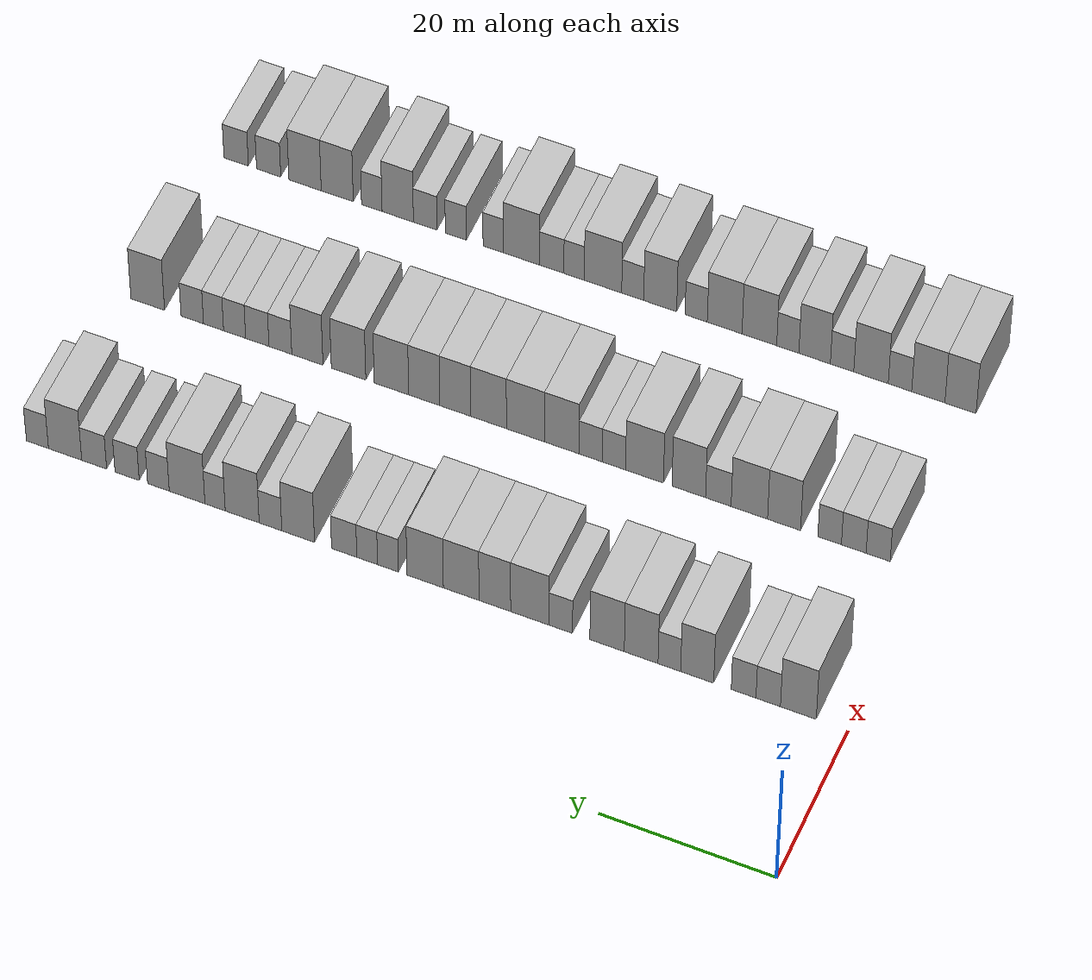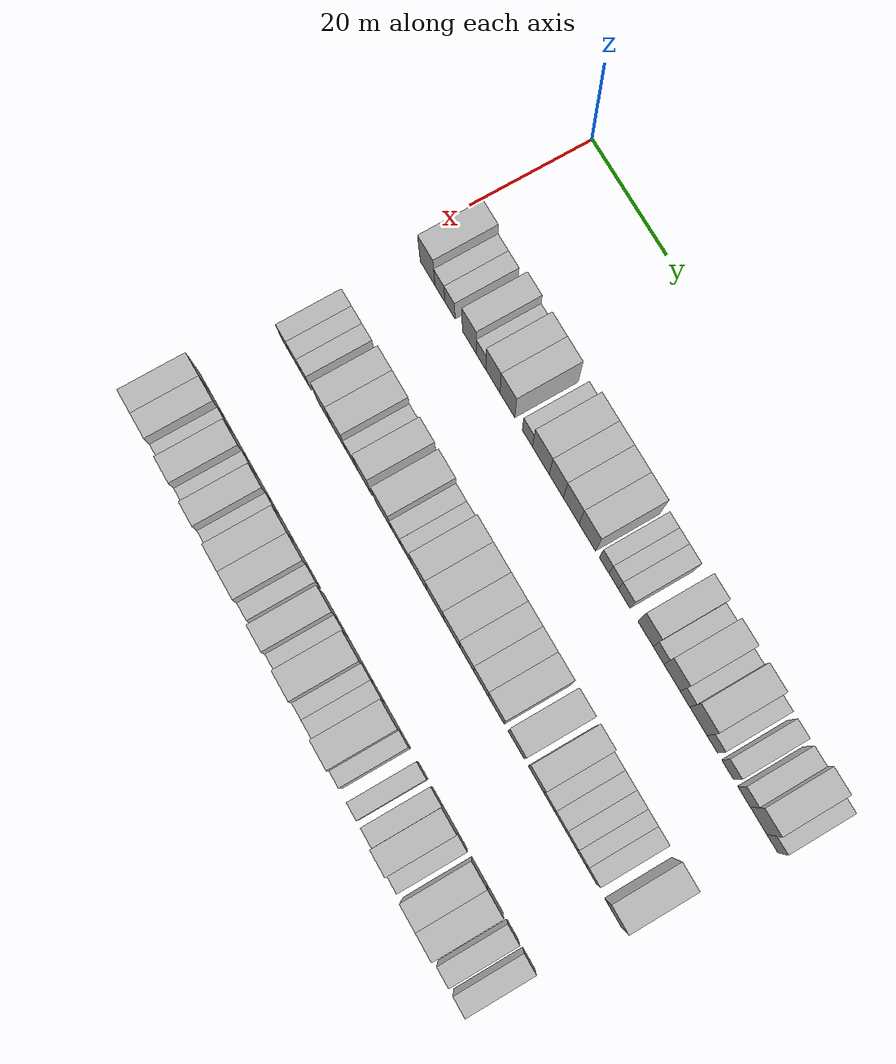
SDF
<sdf version="1.6">
 <world name="default">
  <model name="building_100">
   <static>1</static>
   <pose>25.0000 5.7225 0 0.000000 0.000000 0.000000</pose>
   <link name="link">
    <pose>0 0 4.50 0 0 0</pose>
    <collision name="collision"><geometry><box><size>10.0000 4.0671 9.0000</size></box></geometry></collision>
    <visual name="visual">
     <cast_shadows>0</cast_shadows>
     <geometry><box><size>10.0000 4.0671 9.0000</size></box></geometry>
     <material>
      <script>
       <uri>model://HANNAS_wall/materials/scripts</uri>
       <uri>model://HANNAS_wall/materials/textures</uri>
       <name>vrc/HANNAS_wall</name>
      </script>
     </material>
    </visual>
   </link>
  </model>
  <model name="building_101">
   <static>1</static>
   <pose>25.0000 9.1482 0 0.000000 0.000000 0.000000</pose>
   <link name="link">
    <pose>0 0 3.00 0 0 0</pose>
    <collision name="collision"><geometry><box><size>10.0000 2.7841 6.0000</size></box></geometry></collision>
    <visual name="visual">
     <cast_shadows>0</cast_shadows>
     <geometry><box><size>10.0000 2.7841 6.0000</size></box></geometry>
     <material>
      <script>
       <uri>model://HANNAS_wall/materials/scripts</uri>
       <uri>model://HANNAS_wall/materials/textures</uri>
       <name>vrc/HANNAS_wall</name>
      </script>
     </material>
    </visual>
   </link>
  </model>
  <model name="building_102">
   <static>1</static>
   <pose>25.0000 11.9509 0 0.000000 0.000000 0.000000</pose>
   <link name="link">
    <pose>0 0 3.00 0 0 0</pose>
    <collision name="collision"><geometry><box><size>10.0000 2.8212 6.0000</size></box></geometry></collision>
    <visual name="visual">
     <cast_shadows>0</cast_shadows>
     <geometry><box><size>10.0000 2.8212 6.0000</size></box></geometry>
     <material>
      <script>
       <uri>model://HANNAS_wall/materials/scripts</uri>
       <uri>model://HANNAS_wall/materials/textures</uri>
       <name>vrc/HANNAS_wall</name>
      </script>
     </material>
    </visual>
   </link>
  </model>
  <model name="building_103">
   <static>1</static>
   <pose>25.0000 17.2552 0 0.000000 0.000000 0.000000</pose>
   <link name="link">
    <pose>0 0 4.50 0 0 0</pose>
    <collision name="collision"><geometry><box><size>10.0000 3.7873 9.0000</size></box></geometry></collision>
    <visual name="visual">
     <cast_shadows>0</cast_shadows>
     <geometry><box><size>10.0000 3.7873 9.0000</size></box></geometry>
     <material>
      <script>
       <uri>model://HANNAS_wall/materials/scripts</uri>
       <uri>model://HANNAS_wall/materials/textures</uri>
       <name>vrc/HANNAS_wall</name>
      </script>
     </material>
    </visual>
   </link>
  </model>
  <model name="building_104">
   <static>1</static>
   <pose>25.0000 20.4433 0 0.000000 0.000000 0.000000</pose>
   <link name="link">
    <pose>0 0 3.00 0 0 0</pose>
    <collision name="collision"><geometry><box><size>10.0000 2.5890 6.0000</size></box></geometry></collision>
    <visual name="visual">
     <cast_shadows>0</cast_shadows>
     <geometry><box><size>10.0000 2.5890 6.0000</size></box></geometry>
     <material>
      <script>
       <uri>model://HANNAS_wall/materials/scripts</uri>
       <uri>model://HANNAS_wall/materials/textures</uri>
       <name>vrc/HANNAS_wall</name>
      </script>
     </material>
    </visual>
   </link>
  </model>
  <model name="building_105">
   <static>1</static>
   <pose>25.0000 23.6752 0 0.000000 0.000000 0.000000</pose>
   <link name="link">
    <pose>0 0 4.50 0 0 0</pose>
    <collision name="collision"><geometry><box><size>10.0000 3.8747 9.0000</size></box></geometry></collision>
    <visual name="visual">
     <cast_shadows>0</cast_shadows>
     <geometry><box><size>10.0000 3.8747 9.0000</size></box></geometry>
     <material>
      <script>
       <uri>model://HANNAS_wall/materials/scripts</uri>
       <uri>model://HANNAS_wall/materials/textures</uri>
       <name>vrc/HANNAS_wall</name>
      </script>
     </material>
    </visual>
   </link>
  </model>
  <model name="building_106">
   <static>1</static>
   <pose>25.0000 27.5951 0 0.000000 0.000000 0.000000</pose>
   <link name="link">
    <pose>0 0 4.50 0 0 0</pose>
    <collision name="collision"><geometry><box><size>10.0000 3.9653 9.0000</size></box></geometry></collision>
    <visual name="visual">
     <cast_shadows>0</cast_shadows>
     <geometry><box><size>10.0000 3.9653 9.0000</size></box></geometry>
     <material>
      <script>
       <uri>model://HANNAS_wall/materials/scripts</uri>
       <uri>model://HANNAS_wall/materials/textures</uri>
       <name>vrc/HANNAS_wall</name>
      </script>
     </material>
    </visual>
   </link>
  </model>
  <model name="building_107">
   <static>1</static>
   <pose>25.0000 32.9347 0 0.000000 0.000000 0.000000</pose>
   <link name="link">
    <pose>0 0 3.00 0 0 0</pose>
    <collision name="collision"><geometry><box><size>10.0000 2.7138 6.0000</size></box></geometry></collision>
    <visual name="visual">
     <cast_shadows>0</cast_shadows>
     <geometry><box><size>10.0000 2.7138 6.0000</size></box></geometry>
     <material>
      <script>
       <uri>model://HANNAS_wall/materials/scripts</uri>
       <uri>model://HANNAS_wall/materials/textures</uri>
       <name>vrc/HANNAS_wall</name>
      </script>
     </material>
    </visual>
   </link>
  </model>
  <model name="building_108">
   <static>1</static>
   <pose>25.0000 36.5112 0 0.000000 0.000000 0.000000</pose>
   <link name="link">
    <pose>0 0 4.50 0 0 0</pose>
    <collision name="collision"><geometry><box><size>10.0000 4.4392 9.0000</size></box></geometry></collision>
    <visual name="visual">
     <cast_shadows>0</cast_shadows>
     <geometry><box><size>10.0000 4.4392 9.0000</size></box></geometry>
     <material>
      <script>
       <uri>model://HANNAS_wall/materials/scripts</uri>
       <uri>model://HANNAS_wall/materials/textures</uri>
       <name>vrc/HANNAS_wall</name>
      </script>
     </material>
    </visual>
   </link>
  </model>
  <model name="building_109">
   <static>1</static>
   <pose>25.0000 40.5691 0 0.000000 0.000000 0.000000</pose>
   <link name="link">
    <pose>0 0 4.50 0 0 0</pose>
    <collision name="collision"><geometry><box><size>10.0000 3.6765 9.0000</size></box></geometry></collision>
    <visual name="visual">
     <cast_shadows>0</cast_shadows>
     <geometry><box><size>10.0000 3.6765 9.0000</size></box></geometry>
     <material>
      <script>
       <uri>model://HANNAS_wall/materials/scripts</uri>
       <uri>model://HANNAS_wall/materials/textures</uri>
       <name>vrc/HANNAS_wall</name>
      </script>
     </material>
    </visual>
   </link>
  </model>
  <model name="building_110">
   <static>1</static>
   <pose>25.0000 44.4764 0 0.000000 0.000000 0.000000</pose>
   <link name="link">
    <pose>0 0 4.50 0 0 0</pose>
    <collision name="collision"><geometry><box><size>10.0000 4.1382 9.0000</size></box></geometry></collision>
    <visual name="visual">
     <cast_shadows>0</cast_shadows>
     <geometry><box><size>10.0000 4.1382 9.0000</size></box></geometry>
     <material>
      <script>
       <uri>model://HANNAS_wall/materials/scripts</uri>
       <uri>model://HANNAS_wall/materials/textures</uri>
       <name>vrc/HANNAS_wall</name>
      </script>
     </material>
    </visual>
   </link>
  </model>
  <model name="building_111">
   <static>1</static>
   <pose>25.0000 48.6621 0 0.000000 0.000000 0.000000</pose>
   <link name="link">
    <pose>0 0 4.50 0 0 0</pose>
    <collision name="collision"><geometry><box><size>10.0000 4.2331 9.0000</size></box></geometry></collision>
    <visual name="visual">
     <cast_shadows>0</cast_shadows>
     <geometry><box><size>10.0000 4.2331 9.0000</size></box></geometry>
     <material>
      <script>
       <uri>model://HANNAS_wall/materials/scripts</uri>
       <uri>model://HANNAS_wall/materials/textures</uri>
       <name>vrc/HANNAS_wall</name>
      </script>
     </material>
    </visual>
   </link>
  </model>
  <model name="building_112">
   <static>1</static>
   <pose>25.0000 53.0008 0 0.000000 0.000000 0.000000</pose>
   <link name="link">
    <pose>0 0 3.00 0 0 0</pose>
    <collision name="collision"><geometry><box><size>10.0000 2.4443 6.0000</size></box></geometry></collision>
    <visual name="visual">
     <cast_shadows>0</cast_shadows>
     <geometry><box><size>10.0000 2.4443 6.0000</size></box></geometry>
     <material>
      <script>
       <uri>model://HANNAS_wall/materials/scripts</uri>
       <uri>model://HANNAS_wall/materials/textures</uri>
       <name>vrc/HANNAS_wall</name>
      </script>
     </material>
    </visual>
   </link>
  </model>
  <model name="building_113">
   <static>1</static>
   <pose>25.0000 55.4373 0 0.000000 0.000000 0.000000</pose>
   <link name="link">
    <pose>0 0 3.00 0 0 0</pose>
    <collision name="collision"><geometry><box><size>10.0000 2.4286 6.0000</size></box></geometry></collision>
    <visual name="visual">
     <cast_shadows>0</cast_shadows>
     <geometry><box><size>10.0000 2.4286 6.0000</size></box></geometry>
     <material>
      <script>
       <uri>model://HANNAS_wall/materials/scripts</uri>
       <uri>model://HANNAS_wall/materials/textures</uri>
       <name>vrc/HANNAS_wall</name>
      </script>
     </material>
    </visual>
   </link>
  </model>
  <model name="building_114">
   <static>1</static>
   <pose>25.0000 58.1340 0 0.000000 0.000000 0.000000</pose>
   <link name="link">
    <pose>0 0 3.00 0 0 0</pose>
    <collision name="collision"><geometry><box><size>10.0000 2.9649 6.0000</size></box></geometry></collision>
    <visual name="visual">
     <cast_shadows>0</cast_shadows>
     <geometry><box><size>10.0000 2.9649 6.0000</size></box></geometry>
     <material>
      <script>
       <uri>model://HANNAS_wall/materials/scripts</uri>
       <uri>model://HANNAS_wall/materials/textures</uri>
       <name>vrc/HANNAS_wall</name>
      </script>
     </material>
    </visual>
   </link>
  </model>
  <model name="building_115">
   <static>1</static>
   <pose>25.0000 63.5400 0 0.000000 0.000000 0.000000</pose>
   <link name="link">
    <pose>0 0 4.50 0 0 0</pose>
    <collision name="collision"><geometry><box><size>10.0000 3.8471 9.0000</size></box></geometry></collision>
    <visual name="visual">
     <cast_shadows>0</cast_shadows>
     <geometry><box><size>10.0000 3.8471 9.0000</size></box></geometry>
     <material>
      <script>
       <uri>model://HANNAS_wall/materials/scripts</uri>
       <uri>model://HANNAS_wall/materials/textures</uri>
       <name>vrc/HANNAS_wall</name>
      </script>
     </material>
    </visual>
   </link>
  </model>
  <model name="building_116">
   <static>1</static>
   <pose>25.0000 66.8009 0 0.000000 0.000000 0.000000</pose>
   <link name="link">
    <pose>0 0 3.00 0 0 0</pose>
    <collision name="collision"><geometry><box><size>10.0000 2.6747 6.0000</size></box></geometry></collision>
    <visual name="visual">
     <cast_shadows>0</cast_shadows>
     <geometry><box><size>10.0000 2.6747 6.0000</size></box></geometry>
     <material>
      <script>
       <uri>model://HANNAS_wall/materials/scripts</uri>
       <uri>model://HANNAS_wall/materials/textures</uri>
       <name>vrc/HANNAS_wall</name>
      </script>
     </material>
    </visual>
   </link>
  </model>
  <model name="building_117">
   <static>1</static>
   <pose>25.0000 70.1409 0 0.000000 0.000000 0.000000</pose>
   <link name="link">
    <pose>0 0 4.50 0 0 0</pose>
    <collision name="collision"><geometry><box><size>10.0000 4.0053 9.0000</size></box></geometry></collision>
    <visual name="visual">
     <cast_shadows>0</cast_shadows>
     <geometry><box><size>10.0000 4.0053 9.0000</size></box></geometry>
     <material>
      <script>
       <uri>model://HANNAS_wall/materials/scripts</uri>
       <uri>model://HANNAS_wall/materials/textures</uri>
       <name>vrc/HANNAS_wall</name>
      </script>
     </material>
    </visual>
   </link>
  </model>
  <model name="building_118">
   <static>1</static>
   <pose>25.0000 73.3453 0 0.000000 0.000000 0.000000</pose>
   <link name="link">
    <pose>0 0 3.00 0 0 0</pose>
    <collision name="collision"><geometry><box><size>10.0000 2.4035 6.0000</size></box></geometry></collision>
    <visual name="visual">
     <cast_shadows>0</cast_shadows>
     <geometry><box><size>10.0000 2.4035 6.0000</size></box></geometry>
     <material>
      <script>
       <uri>model://HANNAS_wall/materials/scripts</uri>
       <uri>model://HANNAS_wall/materials/textures</uri>
       <name>vrc/HANNAS_wall</name>
      </script>
     </material>
    </visual>
   </link>
  </model>
  <model name="building_119">
   <static>1</static>
   <pose>25.0000 76.6622 0 0.000000 0.000000 0.000000</pose>
   <link name="link">
    <pose>0 0 4.50 0 0 0</pose>
    <collision name="collision"><geometry><box><size>10.0000 4.2303 9.0000</size></box></geometry></collision>
    <visual name="visual">
     <cast_shadows>0</cast_shadows>
     <geometry><box><size>10.0000 4.2303 9.0000</size></box></geometry>
     <material>
      <script>
       <uri>model://HANNAS_wall/materials/scripts</uri>
       <uri>model://HANNAS_wall/materials/textures</uri>
       <name>vrc/HANNAS_wall</name>
      </script>
     </material>
    </visual>
   </link>
  </model>
  <model name="building_120">
   <static>1</static>
   <pose>25.0000 80.0647 0 0.000000 0.000000 0.000000</pose>
   <link name="link">
    <pose>0 0 3.00 0 0 0</pose>
    <collision name="collision"><geometry><box><size>10.0000 2.5748 6.0000</size></box></geometry></collision>
    <visual name="visual">
     <cast_shadows>0</cast_shadows>
     <geometry><box><size>10.0000 2.5748 6.0000</size></box></geometry>
     <material>
      <script>
       <uri>model://HANNAS_wall/materials/scripts</uri>
       <uri>model://HANNAS_wall/materials/textures</uri>
       <name>vrc/HANNAS_wall</name>
      </script>
     </material>
    </visual>
   </link>
  </model>
  <model name="building_121">
   <static>1</static>
   <pose>25.0000 83.7918 0 0.000000 0.000000 0.000000</pose>
   <link name="link">
    <pose>0 0 3.00 0 0 0</pose>
    <collision name="collision"><geometry><box><size>10.0000 2.8794 6.0000</size></box></geometry></collision>
    <visual name="visual">
     <cast_shadows>0</cast_shadows>
     <geometry><box><size>10.0000 2.8794 6.0000</size></box></geometry>
     <material>
      <script>
       <uri>model://HANNAS_wall/materials/scripts</uri>
       <uri>model://HANNAS_wall/materials/textures</uri>
       <name>vrc/HANNAS_wall</name>
      </script>
     </material>
    </visual>
   </link>
  </model>
  <model name="building_122">
   <static>1</static>
   <pose>25.0000 87.7174 0 0.000000 0.000000 0.000000</pose>
   <link name="link">
    <pose>0 0 3.00 0 0 0</pose>
    <collision name="collision"><geometry><box><size>10.0000 2.9718 6.0000</size></box></geometry></collision>
    <visual name="visual">
     <cast_shadows>0</cast_shadows>
     <geometry><box><size>10.0000 2.9718 6.0000</size></box></geometry>
     <material>
      <script>
       <uri>model://HANNAS_wall/materials/scripts</uri>
       <uri>model://HANNAS_wall/materials/textures</uri>
       <name>vrc/HANNAS_wall</name>
      </script>
     </material>
    </visual>
   </link>
  </model>
  <model name="building_123">
   <static>1</static>
   <pose>25.0000 91.1930 0 0.000000 0.000000 0.000000</pose>
   <link name="link">
    <pose>0 0 4.50 0 0 0</pose>
    <collision name="collision"><geometry><box><size>10.0000 3.9793 9.0000</size></box></geometry></collision>
    <visual name="visual">
     <cast_shadows>0</cast_shadows>
     <geometry><box><size>10.0000 3.9793 9.0000</size></box></geometry>
     <material>
      <script>
       <uri>model://HANNAS_wall/materials/scripts</uri>
       <uri>model://HANNAS_wall/materials/textures</uri>
       <name>vrc/HANNAS_wall</name>
      </script>
     </material>
    </visual>
   </link>
  </model>
  <model name="building_124">
   <static>1</static>
   <pose>25.0000 94.5028 0 0.000000 0.000000 0.000000</pose>
   <link name="link">
    <pose>0 0 3.00 0 0 0</pose>
    <collision name="collision"><geometry><box><size>10.0000 2.6404 6.0000</size></box></geometry></collision>
    <visual name="visual">
     <cast_shadows>0</cast_shadows>
     <geometry><box><size>10.0000 2.6404 6.0000</size></box></geometry>
     <material>
      <script>
       <uri>model://HANNAS_wall/materials/scripts</uri>
       <uri>model://HANNAS_wall/materials/textures</uri>
       <name>vrc/HANNAS_wall</name>
      </script>
     </material>
    </visual>
   </link>
  </model>
  <model name="building_298">
   <static>1</static>
   <pose>47.0000 5.3678 0 0.000000 0.000000 0.000000</pose>
   <link name="link">
    <pose>0 0 3.00 0 0 0</pose>
    <collision name="collision"><geometry><box><size>10.0000 2.7704 6.0000</size></box></geometry></collision>
    <visual name="visual">
     <cast_shadows>0</cast_shadows>
     <geometry><box><size>10.0000 2.7704 6.0000</size></box></geometry>
     <material>
      <script>
       <uri>model://HANNAS_wall/materials/scripts</uri>
       <uri>model://HANNAS_wall/materials/textures</uri>
       <name>vrc/HANNAS_wall</name>
      </script>
     </material>
    </visual>
   </link>
  </model>
  <model name="building_299">
   <static>1</static>
   <pose>47.0000 8.1744 0 0.000000 0.000000 0.000000</pose>
   <link name="link">
    <pose>0 0 3.00 0 0 0</pose>
    <collision name="collision"><geometry><box><size>10.0000 2.8427 6.0000</size></box></geometry></collision>
    <visual name="visual">
     <cast_shadows>0</cast_shadows>
     <geometry><box><size>10.0000 2.8427 6.0000</size></box></geometry>
     <material>
      <script>
       <uri>model://HANNAS_wall/materials/scripts</uri>
       <uri>model://HANNAS_wall/materials/textures</uri>
       <name>vrc/HANNAS_wall</name>
      </script>
     </material>
    </visual>
   </link>
  </model>
  <model name="building_300">
   <static>1</static>
   <pose>47.0000 10.9571 0 0.000000 0.000000 0.000000</pose>
   <link name="link">
    <pose>0 0 3.00 0 0 0</pose>
    <collision name="collision"><geometry><box><size>10.0000 2.7226 6.0000</size></box></geometry></collision>
    <visual name="visual">
     <cast_shadows>0</cast_shadows>
     <geometry><box><size>10.0000 2.7226 6.0000</size></box></geometry>
     <material>
      <script>
       <uri>model://HANNAS_wall/materials/scripts</uri>
       <uri>model://HANNAS_wall/materials/textures</uri>
       <name>vrc/HANNAS_wall</name>
      </script>
     </material>
    </visual>
   </link>
  </model>
  <model name="building_301">
   <static>1</static>
   <pose>47.0000 16.2301 0 0.000000 0.000000 0.000000</pose>
   <link name="link">
    <pose>0 0 4.50 0 0 0</pose>
    <collision name="collision"><geometry><box><size>10.0000 3.8233 9.0000</size></box></geometry></collision>
    <visual name="visual">
     <cast_shadows>0</cast_shadows>
     <geometry><box><size>10.0000 3.8233 9.0000</size></box></geometry>
     <material>
      <script>
       <uri>model://HANNAS_wall/materials/scripts</uri>
       <uri>model://HANNAS_wall/materials/textures</uri>
       <name>vrc/HANNAS_wall</name>
      </script>
     </material>
    </visual>
   </link>
  </model>
  <model name="building_302">
   <static>1</static>
   <pose>47.0000 20.2582 0 0.000000 0.000000 0.000000</pose>
   <link name="link">
    <pose>0 0 4.50 0 0 0</pose>
    <collision name="collision"><geometry><box><size>10.0000 4.2330 9.0000</size></box></geometry></collision>
    <visual name="visual">
     <cast_shadows>0</cast_shadows>
     <geometry><box><size>10.0000 4.2330 9.0000</size></box></geometry>
     <material>
      <script>
       <uri>model://HANNAS_wall/materials/scripts</uri>
       <uri>model://HANNAS_wall/materials/textures</uri>
       <name>vrc/HANNAS_wall</name>
      </script>
     </material>
    </visual>
   </link>
  </model>
  <model name="building_303">
   <static>1</static>
   <pose>47.0000 23.8601 0 0.000000 0.000000 0.000000</pose>
   <link name="link">
    <pose>0 0 3.00 0 0 0</pose>
    <collision name="collision"><geometry><box><size>10.0000 2.9707 6.0000</size></box></geometry></collision>
    <visual name="visual">
     <cast_shadows>0</cast_shadows>
     <geometry><box><size>10.0000 2.9707 6.0000</size></box></geometry>
     <material>
      <script>
       <uri>model://HANNAS_wall/materials/scripts</uri>
       <uri>model://HANNAS_wall/materials/textures</uri>
       <name>vrc/HANNAS_wall</name>
      </script>
     </material>
    </visual>
   </link>
  </model>
  <model name="building_304">
   <static>1</static>
   <pose>47.0000 27.3022 0 0.000000 0.000000 0.000000</pose>
   <link name="link">
    <pose>0 0 4.50 0 0 0</pose>
    <collision name="collision"><geometry><box><size>10.0000 3.9135 9.0000</size></box></geometry></collision>
    <visual name="visual">
     <cast_shadows>0</cast_shadows>
     <geometry><box><size>10.0000 3.9135 9.0000</size></box></geometry>
     <material>
      <script>
       <uri>model://HANNAS_wall/materials/scripts</uri>
       <uri>model://HANNAS_wall/materials/textures</uri>
       <name>vrc/HANNAS_wall</name>
      </script>
     </material>
    </visual>
   </link>
  </model>
  <model name="building_305">
   <static>1</static>
   <pose>47.0000 32.4741 0 0.000000 0.000000 0.000000</pose>
   <link name="link">
    <pose>0 0 4.50 0 0 0</pose>
    <collision name="collision"><geometry><box><size>10.0000 4.4304 9.0000</size></box></geometry></collision>
    <visual name="visual">
     <cast_shadows>0</cast_shadows>
     <geometry><box><size>10.0000 4.4304 9.0000</size></box></geometry>
     <material>
      <script>
       <uri>model://HANNAS_wall/materials/scripts</uri>
       <uri>model://HANNAS_wall/materials/textures</uri>
       <name>vrc/HANNAS_wall</name>
      </script>
     </material>
    </visual>
   </link>
  </model>
  <model name="building_306">
   <static>1</static>
   <pose>47.0000 36.0598 0 0.000000 0.000000 0.000000</pose>
   <link name="link">
    <pose>0 0 3.00 0 0 0</pose>
    <collision name="collision"><geometry><box><size>10.0000 2.7408 6.0000</size></box></geometry></collision>
    <visual name="visual">
     <cast_shadows>0</cast_shadows>
     <geometry><box><size>10.0000 2.7408 6.0000</size></box></geometry>
     <material>
      <script>
       <uri>model://HANNAS_wall/materials/scripts</uri>
       <uri>model://HANNAS_wall/materials/textures</uri>
       <name>vrc/HANNAS_wall</name>
      </script>
     </material>
    </visual>
   </link>
  </model>
  <model name="building_307">
   <static>1</static>
   <pose>47.0000 38.7850 0 0.000000 0.000000 0.000000</pose>
   <link name="link">
    <pose>0 0 3.00 0 0 0</pose>
    <collision name="collision"><geometry><box><size>10.0000 2.7095 6.0000</size></box></geometry></collision>
    <visual name="visual">
     <cast_shadows>0</cast_shadows>
     <geometry><box><size>10.0000 2.7095 6.0000</size></box></geometry>
     <material>
      <script>
       <uri>model://HANNAS_wall/materials/scripts</uri>
       <uri>model://HANNAS_wall/materials/textures</uri>
       <name>vrc/HANNAS_wall</name>
      </script>
     </material>
    </visual>
   </link>
  </model>
  <model name="building_308">
   <static>1</static>
   <pose>47.0000 42.1781 0 0.000000 0.000000 0.000000</pose>
   <link name="link">
    <pose>0 0 4.50 0 0 0</pose>
    <collision name="collision"><geometry><box><size>10.0000 4.0766 9.0000</size></box></geometry></collision>
    <visual name="visual">
     <cast_shadows>0</cast_shadows>
     <geometry><box><size>10.0000 4.0766 9.0000</size></box></geometry>
     <material>
      <script>
       <uri>model://HANNAS_wall/materials/scripts</uri>
       <uri>model://HANNAS_wall/materials/textures</uri>
       <name>vrc/HANNAS_wall</name>
      </script>
     </material>
    </visual>
   </link>
  </model>
  <model name="building_309">
   <static>1</static>
   <pose>47.0000 46.4569 0 0.000000 0.000000 0.000000</pose>
   <link name="link">
    <pose>0 0 4.50 0 0 0</pose>
    <collision name="collision"><geometry><box><size>10.0000 4.4811 9.0000</size></box></geometry></collision>
    <visual name="visual">
     <cast_shadows>0</cast_shadows>
     <geometry><box><size>10.0000 4.4811 9.0000</size></box></geometry>
     <material>
      <script>
       <uri>model://HANNAS_wall/materials/scripts</uri>
       <uri>model://HANNAS_wall/materials/textures</uri>
       <name>vrc/HANNAS_wall</name>
      </script>
     </material>
    </visual>
   </link>
  </model>
  <model name="building_310">
   <static>1</static>
   <pose>47.0000 50.8077 0 0.000000 0.000000 0.000000</pose>
   <link name="link">
    <pose>0 0 4.50 0 0 0</pose>
    <collision name="collision"><geometry><box><size>10.0000 4.2205 9.0000</size></box></geometry></collision>
    <visual name="visual">
     <cast_shadows>0</cast_shadows>
     <geometry><box><size>10.0000 4.2205 9.0000</size></box></geometry>
     <material>
      <script>
       <uri>model://HANNAS_wall/materials/scripts</uri>
       <uri>model://HANNAS_wall/materials/textures</uri>
       <name>vrc/HANNAS_wall</name>
      </script>
     </material>
    </visual>
   </link>
  </model>
  <model name="building_311">
   <static>1</static>
   <pose>47.0000 54.7469 0 0.000000 0.000000 0.000000</pose>
   <link name="link">
    <pose>0 0 4.50 0 0 0</pose>
    <collision name="collision"><geometry><box><size>10.0000 3.6580 9.0000</size></box></geometry></collision>
    <visual name="visual">
     <cast_shadows>0</cast_shadows>
     <geometry><box><size>10.0000 3.6580 9.0000</size></box></geometry>
     <material>
      <script>
       <uri>model://HANNAS_wall/materials/scripts</uri>
       <uri>model://HANNAS_wall/materials/textures</uri>
       <name>vrc/HANNAS_wall</name>
      </script>
     </material>
    </visual>
   </link>
  </model>
  <model name="building_312">
   <static>1</static>
   <pose>47.0000 58.4207 0 0.000000 0.000000 0.000000</pose>
   <link name="link">
    <pose>0 0 4.50 0 0 0</pose>
    <collision name="collision"><geometry><box><size>10.0000 3.6895 9.0000</size></box></geometry></collision>
    <visual name="visual">
     <cast_shadows>0</cast_shadows>
     <geometry><box><size>10.0000 3.6895 9.0000</size></box></geometry>
     <material>
      <script>
       <uri>model://HANNAS_wall/materials/scripts</uri>
       <uri>model://HANNAS_wall/materials/textures</uri>
       <name>vrc/HANNAS_wall</name>
      </script>
     </material>
    </visual>
   </link>
  </model>
  <model name="building_313">
   <static>1</static>
   <pose>47.0000 62.3192 0 0.000000 0.000000 0.000000</pose>
   <link name="link">
    <pose>0 0 4.50 0 0 0</pose>
    <collision name="collision"><geometry><box><size>10.0000 4.1075 9.0000</size></box></geometry></collision>
    <visual name="visual">
     <cast_shadows>0</cast_shadows>
     <geometry><box><size>10.0000 4.1075 9.0000</size></box></geometry>
     <material>
      <script>
       <uri>model://HANNAS_wall/materials/scripts</uri>
       <uri>model://HANNAS_wall/materials/textures</uri>
       <name>vrc/HANNAS_wall</name>
      </script>
     </material>
    </visual>
   </link>
  </model>
  <model name="building_314">
   <static>1</static>
   <pose>47.0000 67.4334 0 0.000000 0.000000 0.000000</pose>
   <link name="link">
    <pose>0 0 4.50 0 0 0</pose>
    <collision name="collision"><geometry><box><size>10.0000 4.1209 9.0000</size></box></geometry></collision>
    <visual name="visual">
     <cast_shadows>0</cast_shadows>
     <geometry><box><size>10.0000 4.1209 9.0000</size></box></geometry>
     <material>
      <script>
       <uri>model://HANNAS_wall/materials/scripts</uri>
       <uri>model://HANNAS_wall/materials/textures</uri>
       <name>vrc/HANNAS_wall</name>
      </script>
     </material>
    </visual>
   </link>
  </model>
  <model name="building_315">
   <static>1</static>
   <pose>47.0000 72.3638 0 0.000000 0.000000 0.000000</pose>
   <link name="link">
    <pose>0 0 4.50 0 0 0</pose>
    <collision name="collision"><geometry><box><size>10.0000 3.7399 9.0000</size></box></geometry></collision>
    <visual name="visual">
     <cast_shadows>0</cast_shadows>
     <geometry><box><size>10.0000 3.7399 9.0000</size></box></geometry>
     <material>
      <script>
       <uri>model://HANNAS_wall/materials/scripts</uri>
       <uri>model://HANNAS_wall/materials/textures</uri>
       <name>vrc/HANNAS_wall</name>
      </script>
     </material>
    </visual>
   </link>
  </model>
  <model name="building_316">
   <static>1</static>
   <pose>47.0000 75.6004 0 0.000000 0.000000 0.000000</pose>
   <link name="link">
    <pose>0 0 3.00 0 0 0</pose>
    <collision name="collision"><geometry><box><size>10.0000 2.7333 6.0000</size></box></geometry></collision>
    <visual name="visual">
     <cast_shadows>0</cast_shadows>
     <geometry><box><size>10.0000 2.7333 6.0000</size></box></geometry>
     <material>
      <script>
       <uri>model://HANNAS_wall/materials/scripts</uri>
       <uri>model://HANNAS_wall/materials/textures</uri>
       <name>vrc/HANNAS_wall</name>
      </script>
     </material>
    </visual>
   </link>
  </model>
  <model name="building_317">
   <static>1</static>
   <pose>47.0000 78.3673 0 0.000000 0.000000 0.000000</pose>
   <link name="link">
    <pose>0 0 3.00 0 0 0</pose>
    <collision name="collision"><geometry><box><size>10.0000 2.8006 6.0000</size></box></geometry></collision>
    <visual name="visual">
     <cast_shadows>0</cast_shadows>
     <geometry><box><size>10.0000 2.8006 6.0000</size></box></geometry>
     <material>
      <script>
       <uri>model://HANNAS_wall/materials/scripts</uri>
       <uri>model://HANNAS_wall/materials/textures</uri>
       <name>vrc/HANNAS_wall</name>
      </script>
     </material>
    </visual>
   </link>
  </model>
  <model name="building_318">
   <static>1</static>
   <pose>47.0000 81.0976 0 0.000000 0.000000 0.000000</pose>
   <link name="link">
    <pose>0 0 3.00 0 0 0</pose>
    <collision name="collision"><geometry><box><size>10.0000 2.6599 6.0000</size></box></geometry></collision>
    <visual name="visual">
     <cast_shadows>0</cast_shadows>
     <geometry><box><size>10.0000 2.6599 6.0000</size></box></geometry>
     <material>
      <script>
       <uri>model://HANNAS_wall/materials/scripts</uri>
       <uri>model://HANNAS_wall/materials/textures</uri>
       <name>vrc/HANNAS_wall</name>
      </script>
     </material>
    </visual>
   </link>
  </model>
  <model name="building_319">
   <static>1</static>
   <pose>47.0000 83.6331 0 0.000000 0.000000 0.000000</pose>
   <link name="link">
    <pose>0 0 3.00 0 0 0</pose>
    <collision name="collision"><geometry><box><size>10.0000 2.4110 6.0000</size></box></geometry></collision>
    <visual name="visual">
     <cast_shadows>0</cast_shadows>
     <geometry><box><size>10.0000 2.4110 6.0000</size></box></geometry>
     <material>
      <script>
       <uri>model://HANNAS_wall/materials/scripts</uri>
       <uri>model://HANNAS_wall/materials/textures</uri>
       <name>vrc/HANNAS_wall</name>
      </script>
     </material>
    </visual>
   </link>
  </model>
  <model name="building_320">
   <static>1</static>
   <pose>47.0000 86.1953 0 0.000000 0.000000 0.000000</pose>
   <link name="link">
    <pose>0 0 3.00 0 0 0</pose>
    <collision name="collision"><geometry><box><size>10.0000 2.7135 6.0000</size></box></geometry></collision>
    <visual name="visual">
     <cast_shadows>0</cast_shadows>
     <geometry><box><size>10.0000 2.7135 6.0000</size></box></geometry>
     <material>
      <script>
       <uri>model://HANNAS_wall/materials/scripts</uri>
       <uri>model://HANNAS_wall/materials/textures</uri>
       <name>vrc/HANNAS_wall</name>
      </script>
     </material>
    </visual>
   </link>
  </model>
  <model name="building_321">
   <static>1</static>
   <pose>47.0000 91.5850 0 0.000000 0.000000 0.000000</pose>
   <link name="link">
    <pose>0 0 4.50 0 0 0</pose>
    <collision name="collision"><geometry><box><size>10.0000 4.0658 9.0000</size></box></geometry></collision>
    <visual name="visual">
     <cast_shadows>0</cast_shadows>
     <geometry><box><size>10.0000 4.0658 9.0000</size></box></geometry>
     <material>
      <script>
       <uri>model://HANNAS_wall/materials/scripts</uri>
       <uri>model://HANNAS_wall/materials/textures</uri>
       <name>vrc/HANNAS_wall</name>
      </script>
     </material>
    </visual>
   </link>
  </model>
  <model name="building_484">
   <static>1</static>
   <pose>69.0000 4.4350 0 0.000000 0.000000 0.000000</pose>
   <link name="link">
    <pose>0 0 4.50 0 0 0</pose>
    <collision name="collision"><geometry><box><size>10.0000 3.6245 9.0000</size></box></geometry></collision>
    <visual name="visual">
     <cast_shadows>0</cast_shadows>
     <geometry><box><size>10.0000 3.6245 9.0000</size></box></geometry>
     <material>
      <script>
       <uri>model://HANNAS_wall/materials/scripts</uri>
       <uri>model://HANNAS_wall/materials/textures</uri>
       <name>vrc/HANNAS_wall</name>
      </script>
     </material>
    </visual>
   </link>
  </model>
  <model name="building_485">
   <static>1</static>
   <pose>69.0000 8.1912 0 0.000000 0.000000 0.000000</pose>
   <link name="link">
    <pose>0 0 4.50 0 0 0</pose>
    <collision name="collision"><geometry><box><size>10.0000 3.8880 9.0000</size></box></geometry></collision>
    <visual name="visual">
     <cast_shadows>0</cast_shadows>
     <geometry><box><size>10.0000 3.8880 9.0000</size></box></geometry>
     <material>
      <script>
       <uri>model://HANNAS_wall/materials/scripts</uri>
       <uri>model://HANNAS_wall/materials/textures</uri>
       <name>vrc/HANNAS_wall</name>
      </script>
     </material>
    </visual>
   </link>
  </model>
  <model name="building_486">
   <static>1</static>
   <pose>69.0000 11.5034 0 0.000000 0.000000 0.000000</pose>
   <link name="link">
    <pose>0 0 3.00 0 0 0</pose>
    <collision name="collision"><geometry><box><size>10.0000 2.7363 6.0000</size></box></geometry></collision>
    <visual name="visual">
     <cast_shadows>0</cast_shadows>
     <geometry><box><size>10.0000 2.7363 6.0000</size></box></geometry>
     <material>
      <script>
       <uri>model://HANNAS_wall/materials/scripts</uri>
       <uri>model://HANNAS_wall/materials/textures</uri>
       <name>vrc/HANNAS_wall</name>
      </script>
     </material>
    </visual>
   </link>
  </model>
  <model name="building_487">
   <static>1</static>
   <pose>69.0000 14.8920 0 0.000000 0.000000 0.000000</pose>
   <link name="link">
    <pose>0 0 4.50 0 0 0</pose>
    <collision name="collision"><geometry><box><size>10.0000 4.0409 9.0000</size></box></geometry></collision>
    <visual name="visual">
     <cast_shadows>0</cast_shadows>
     <geometry><box><size>10.0000 4.0409 9.0000</size></box></geometry>
     <material>
      <script>
       <uri>model://HANNAS_wall/materials/scripts</uri>
       <uri>model://HANNAS_wall/materials/textures</uri>
       <name>vrc/HANNAS_wall</name>
      </script>
     </material>
    </visual>
   </link>
  </model>
  <model name="building_488">
   <static>1</static>
   <pose>69.0000 18.2842 0 0.000000 0.000000 0.000000</pose>
   <link name="link">
    <pose>0 0 3.00 0 0 0</pose>
    <collision name="collision"><geometry><box><size>10.0000 2.7435 6.0000</size></box></geometry></collision>
    <visual name="visual">
     <cast_shadows>0</cast_shadows>
     <geometry><box><size>10.0000 2.7435 6.0000</size></box></geometry>
     <material>
      <script>
       <uri>model://HANNAS_wall/materials/scripts</uri>
       <uri>model://HANNAS_wall/materials/textures</uri>
       <name>vrc/HANNAS_wall</name>
      </script>
     </material>
    </visual>
   </link>
  </model>
  <model name="building_489">
   <static>1</static>
   <pose>69.0000 21.5105 0 0.000000 0.000000 0.000000</pose>
   <link name="link">
    <pose>0 0 4.50 0 0 0</pose>
    <collision name="collision"><geometry><box><size>10.0000 3.7090 9.0000</size></box></geometry></collision>
    <visual name="visual">
     <cast_shadows>0</cast_shadows>
     <geometry><box><size>10.0000 3.7090 9.0000</size></box></geometry>
     <material>
      <script>
       <uri>model://HANNAS_wall/materials/scripts</uri>
       <uri>model://HANNAS_wall/materials/textures</uri>
       <name>vrc/HANNAS_wall</name>
      </script>
     </material>
    </visual>
   </link>
  </model>
  <model name="building_490">
   <static>1</static>
   <pose>69.0000 24.6725 0 0.000000 0.000000 0.000000</pose>
   <link name="link">
    <pose>0 0 3.00 0 0 0</pose>
    <collision name="collision"><geometry><box><size>10.0000 2.6150 6.0000</size></box></geometry></collision>
    <visual name="visual">
     <cast_shadows>0</cast_shadows>
     <geometry><box><size>10.0000 2.6150 6.0000</size></box></geometry>
     <material>
      <script>
       <uri>model://HANNAS_wall/materials/scripts</uri>
       <uri>model://HANNAS_wall/materials/textures</uri>
       <name>vrc/HANNAS_wall</name>
      </script>
     </material>
    </visual>
   </link>
  </model>
  <model name="building_491">
   <static>1</static>
   <pose>69.0000 28.0264 0 0.000000 0.000000 0.000000</pose>
   <link name="link">
    <pose>0 0 4.50 0 0 0</pose>
    <collision name="collision"><geometry><box><size>10.0000 4.0927 9.0000</size></box></geometry></collision>
    <visual name="visual">
     <cast_shadows>0</cast_shadows>
     <geometry><box><size>10.0000 4.0927 9.0000</size></box></geometry>
     <material>
      <script>
       <uri>model://HANNAS_wall/materials/scripts</uri>
       <uri>model://HANNAS_wall/materials/textures</uri>
       <name>vrc/HANNAS_wall</name>
      </script>
     </material>
    </visual>
   </link>
  </model>
  <model name="building_492">
   <static>1</static>
   <pose>69.0000 32.1324 0 0.000000 0.000000 0.000000</pose>
   <link name="link">
    <pose>0 0 4.50 0 0 0</pose>
    <collision name="collision"><geometry><box><size>10.0000 4.1193 9.0000</size></box></geometry></collision>
    <visual name="visual">
     <cast_shadows>0</cast_shadows>
     <geometry><box><size>10.0000 4.1193 9.0000</size></box></geometry>
     <material>
      <script>
       <uri>model://HANNAS_wall/materials/scripts</uri>
       <uri>model://HANNAS_wall/materials/textures</uri>
       <name>vrc/HANNAS_wall</name>
      </script>
     </material>
    </visual>
   </link>
  </model>
  <model name="building_493">
   <static>1</static>
   <pose>69.0000 35.5072 0 0.000000 0.000000 0.000000</pose>
   <link name="link">
    <pose>0 0 3.00 0 0 0</pose>
    <collision name="collision"><geometry><box><size>10.0000 2.6303 6.0000</size></box></geometry></collision>
    <visual name="visual">
     <cast_shadows>0</cast_shadows>
     <geometry><box><size>10.0000 2.6303 6.0000</size></box></geometry>
     <material>
      <script>
       <uri>model://HANNAS_wall/materials/scripts</uri>
       <uri>model://HANNAS_wall/materials/textures</uri>
       <name>vrc/HANNAS_wall</name>
      </script>
     </material>
    </visual>
   </link>
  </model>
  <model name="building_494">
   <static>1</static>
   <pose>69.0000 39.7827 0 0.000000 0.000000 0.000000</pose>
   <link name="link">
    <pose>0 0 4.50 0 0 0</pose>
    <collision name="collision"><geometry><box><size>10.0000 3.9207 9.0000</size></box></geometry></collision>
    <visual name="visual">
     <cast_shadows>0</cast_shadows>
     <geometry><box><size>10.0000 3.9207 9.0000</size></box></geometry>
     <material>
      <script>
       <uri>model://HANNAS_wall/materials/scripts</uri>
       <uri>model://HANNAS_wall/materials/textures</uri>
       <name>vrc/HANNAS_wall</name>
      </script>
     </material>
    </visual>
   </link>
  </model>
  <model name="building_495">
   <static>1</static>
   <pose>69.0000 43.0544 0 0.000000 0.000000 0.000000</pose>
   <link name="link">
    <pose>0 0 3.00 0 0 0</pose>
    <collision name="collision"><geometry><box><size>10.0000 2.6227 6.0000</size></box></geometry></collision>
    <visual name="visual">
     <cast_shadows>0</cast_shadows>
     <geometry><box><size>10.0000 2.6227 6.0000</size></box></geometry>
     <material>
      <script>
       <uri>model://HANNAS_wall/materials/scripts</uri>
       <uri>model://HANNAS_wall/materials/textures</uri>
       <name>vrc/HANNAS_wall</name>
      </script>
     </material>
    </visual>
   </link>
  </model>
  <model name="building_496">
   <static>1</static>
   <pose>69.0000 46.5951 0 0.000000 0.000000 0.000000</pose>
   <link name="link">
    <pose>0 0 4.50 0 0 0</pose>
    <collision name="collision"><geometry><box><size>10.0000 4.4586 9.0000</size></box></geometry></collision>
    <visual name="visual">
     <cast_shadows>0</cast_shadows>
     <geometry><box><size>10.0000 4.4586 9.0000</size></box></geometry>
     <material>
      <script>
       <uri>model://HANNAS_wall/materials/scripts</uri>
       <uri>model://HANNAS_wall/materials/textures</uri>
       <name>vrc/HANNAS_wall</name>
      </script>
     </material>
    </visual>
   </link>
  </model>
  <model name="building_497">
   <static>1</static>
   <pose>69.0000 50.0493 0 0.000000 0.000000 0.000000</pose>
   <link name="link">
    <pose>0 0 3.00 0 0 0</pose>
    <collision name="collision"><geometry><box><size>10.0000 2.4499 6.0000</size></box></geometry></collision>
    <visual name="visual">
     <cast_shadows>0</cast_shadows>
     <geometry><box><size>10.0000 2.4499 6.0000</size></box></geometry>
     <material>
      <script>
       <uri>model://HANNAS_wall/materials/scripts</uri>
       <uri>model://HANNAS_wall/materials/textures</uri>
       <name>vrc/HANNAS_wall</name>
      </script>
     </material>
    </visual>
   </link>
  </model>
  <model name="building_498">
   <static>1</static>
   <pose>69.0000 52.7395 0 0.000000 0.000000 0.000000</pose>
   <link name="link">
    <pose>0 0 3.00 0 0 0</pose>
    <collision name="collision"><geometry><box><size>10.0000 2.9307 6.0000</size></box></geometry></collision>
    <visual name="visual">
     <cast_shadows>0</cast_shadows>
     <geometry><box><size>10.0000 2.9307 6.0000</size></box></geometry>
     <material>
      <script>
       <uri>model://HANNAS_wall/materials/scripts</uri>
       <uri>model://HANNAS_wall/materials/textures</uri>
       <name>vrc/HANNAS_wall</name>
      </script>
     </material>
    </visual>
   </link>
  </model>
  <model name="building_499">
   <static>1</static>
   <pose>69.0000 56.3639 0 0.000000 0.000000 0.000000</pose>
   <link name="link">
    <pose>0 0 4.50 0 0 0</pose>
    <collision name="collision"><geometry><box><size>10.0000 4.3180 9.0000</size></box></geometry></collision>
    <visual name="visual">
     <cast_shadows>0</cast_shadows>
     <geometry><box><size>10.0000 4.3180 9.0000</size></box></geometry>
     <material>
      <script>
       <uri>model://HANNAS_wall/materials/scripts</uri>
       <uri>model://HANNAS_wall/materials/textures</uri>
       <name>vrc/HANNAS_wall</name>
      </script>
     </material>
    </visual>
   </link>
  </model>
  <model name="building_500">
   <static>1</static>
   <pose>69.0000 59.7500 0 0.000000 0.000000 0.000000</pose>
   <link name="link">
    <pose>0 0 3.00 0 0 0</pose>
    <collision name="collision"><geometry><box><size>10.0000 2.4543 6.0000</size></box></geometry></collision>
    <visual name="visual">
     <cast_shadows>0</cast_shadows>
     <geometry><box><size>10.0000 2.4543 6.0000</size></box></geometry>
     <material>
      <script>
       <uri>model://HANNAS_wall/materials/scripts</uri>
       <uri>model://HANNAS_wall/materials/textures</uri>
       <name>vrc/HANNAS_wall</name>
      </script>
     </material>
    </visual>
   </link>
  </model>
  <model name="building_501">
   <static>1</static>
   <pose>69.0000 64.2521 0 0.000000 0.000000 0.000000</pose>
   <link name="link">
    <pose>0 0 3.00 0 0 0</pose>
    <collision name="collision"><geometry><box><size>10.0000 2.5497 6.0000</size></box></geometry></collision>
    <visual name="visual">
     <cast_shadows>0</cast_shadows>
     <geometry><box><size>10.0000 2.5497 6.0000</size></box></geometry>
     <material>
      <script>
       <uri>model://HANNAS_wall/materials/scripts</uri>
       <uri>model://HANNAS_wall/materials/textures</uri>
       <name>vrc/HANNAS_wall</name>
      </script>
     </material>
    </visual>
   </link>
  </model>
  <model name="building_502">
   <static>1</static>
   <pose>69.0000 67.9551 0 0.000000 0.000000 0.000000</pose>
   <link name="link">
    <pose>0 0 3.00 0 0 0</pose>
    <collision name="collision"><geometry><box><size>10.0000 2.8564 6.0000</size></box></geometry></collision>
    <visual name="visual">
     <cast_shadows>0</cast_shadows>
     <geometry><box><size>10.0000 2.8564 6.0000</size></box></geometry>
     <material>
      <script>
       <uri>model://HANNAS_wall/materials/scripts</uri>
       <uri>model://HANNAS_wall/materials/textures</uri>
       <name>vrc/HANNAS_wall</name>
      </script>
     </material>
    </visual>
   </link>
  </model>
  <model name="building_503">
   <static>1</static>
   <pose>69.0000 71.2796 0 0.000000 0.000000 0.000000</pose>
   <link name="link">
    <pose>0 0 4.50 0 0 0</pose>
    <collision name="collision"><geometry><box><size>10.0000 3.7926 9.0000</size></box></geometry></collision>
    <visual name="visual">
     <cast_shadows>0</cast_shadows>
     <geometry><box><size>10.0000 3.7926 9.0000</size></box></geometry>
     <material>
      <script>
       <uri>model://HANNAS_wall/materials/scripts</uri>
       <uri>model://HANNAS_wall/materials/textures</uri>
       <name>vrc/HANNAS_wall</name>
      </script>
     </material>
    </visual>
   </link>
  </model>
  <model name="building_504">
   <static>1</static>
   <pose>69.0000 74.4263 0 0.000000 0.000000 0.000000</pose>
   <link name="link">
    <pose>0 0 3.00 0 0 0</pose>
    <collision name="collision"><geometry><box><size>10.0000 2.5006 6.0000</size></box></geometry></collision>
    <visual name="visual">
     <cast_shadows>0</cast_shadows>
     <geometry><box><size>10.0000 2.5006 6.0000</size></box></geometry>
     <material>
      <script>
       <uri>model://HANNAS_wall/materials/scripts</uri>
       <uri>model://HANNAS_wall/materials/textures</uri>
       <name>vrc/HANNAS_wall</name>
      </script>
     </material>
    </visual>
   </link>
  </model>
  <model name="building_505">
   <static>1</static>
   <pose>69.0000 78.6271 0 0.000000 0.000000 0.000000</pose>
   <link name="link">
    <pose>0 0 4.50 0 0 0</pose>
    <collision name="collision"><geometry><box><size>10.0000 3.9010 9.0000</size></box></geometry></collision>
    <visual name="visual">
     <cast_shadows>0</cast_shadows>
     <geometry><box><size>10.0000 3.9010 9.0000</size></box></geometry>
     <material>
      <script>
       <uri>model://HANNAS_wall/materials/scripts</uri>
       <uri>model://HANNAS_wall/materials/textures</uri>
       <name>vrc/HANNAS_wall</name>
      </script>
     </material>
    </visual>
   </link>
  </model>
  <model name="building_506">
   <static>1</static>
   <pose>69.0000 82.5458 0 0.000000 0.000000 0.000000</pose>
   <link name="link">
    <pose>0 0 4.50 0 0 0</pose>
    <collision name="collision"><geometry><box><size>10.0000 3.9366 9.0000</size></box></geometry></collision>
    <visual name="visual">
     <cast_shadows>0</cast_shadows>
     <geometry><box><size>10.0000 3.9366 9.0000</size></box></geometry>
     <material>
      <script>
       <uri>model://HANNAS_wall/materials/scripts</uri>
       <uri>model://HANNAS_wall/materials/textures</uri>
       <name>vrc/HANNAS_wall</name>
      </script>
     </material>
    </visual>
   </link>
  </model>
  <model name="building_507">
   <static>1</static>
   <pose>69.0000 86.9934 0 0.000000 0.000000 0.000000</pose>
   <link name="link">
    <pose>0 0 3.00 0 0 0</pose>
    <collision name="collision"><geometry><box><size>10.0000 2.9585 6.0000</size></box></geometry></collision>
    <visual name="visual">
     <cast_shadows>0</cast_shadows>
     <geometry><box><size>10.0000 2.9585 6.0000</size></box></geometry>
     <material>
      <script>
       <uri>model://HANNAS_wall/materials/scripts</uri>
       <uri>model://HANNAS_wall/materials/textures</uri>
       <name>vrc/HANNAS_wall</name>
      </script>
     </material>
    </visual>
   </link>
  </model>
  <model name="building_508">
   <static>1</static>
   <pose>69.0000 90.9673 0 0.000000 0.000000 0.000000</pose>
   <link name="link">
    <pose>0 0 3.00 0 0 0</pose>
    <collision name="collision"><geometry><box><size>10.0000 2.9894 6.0000</size></box></geometry></collision>
    <visual name="visual">
     <cast_shadows>0</cast_shadows>
     <geometry><box><size>10.0000 2.9894 6.0000</size></box></geometry>
     <material>
      <script>
       <uri>model://HANNAS_wall/materials/scripts</uri>
       <uri>model://HANNAS_wall/materials/textures</uri>
       <name>vrc/HANNAS_wall</name>
      </script>
     </material>
    </visual>
   </link>
  </model>
 </world>
</sdf>
